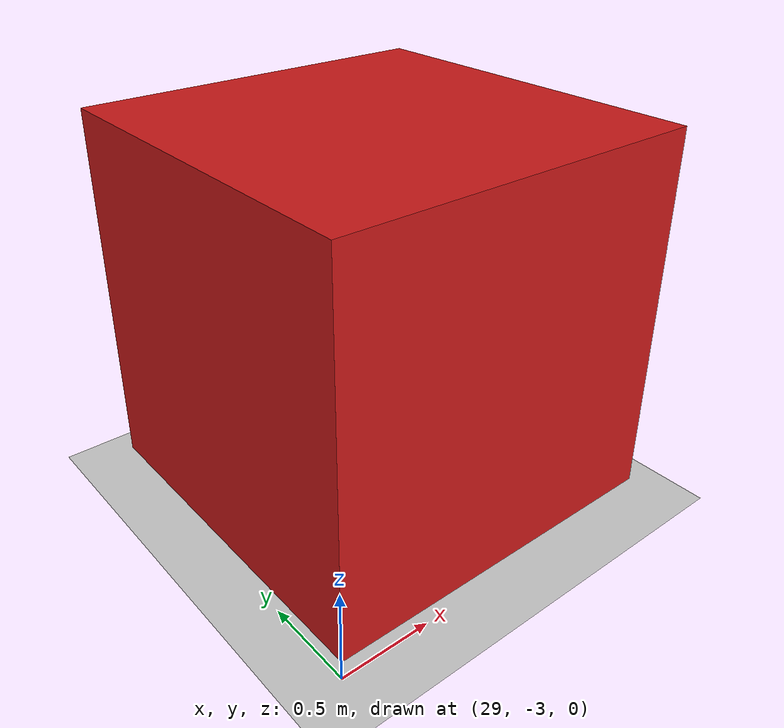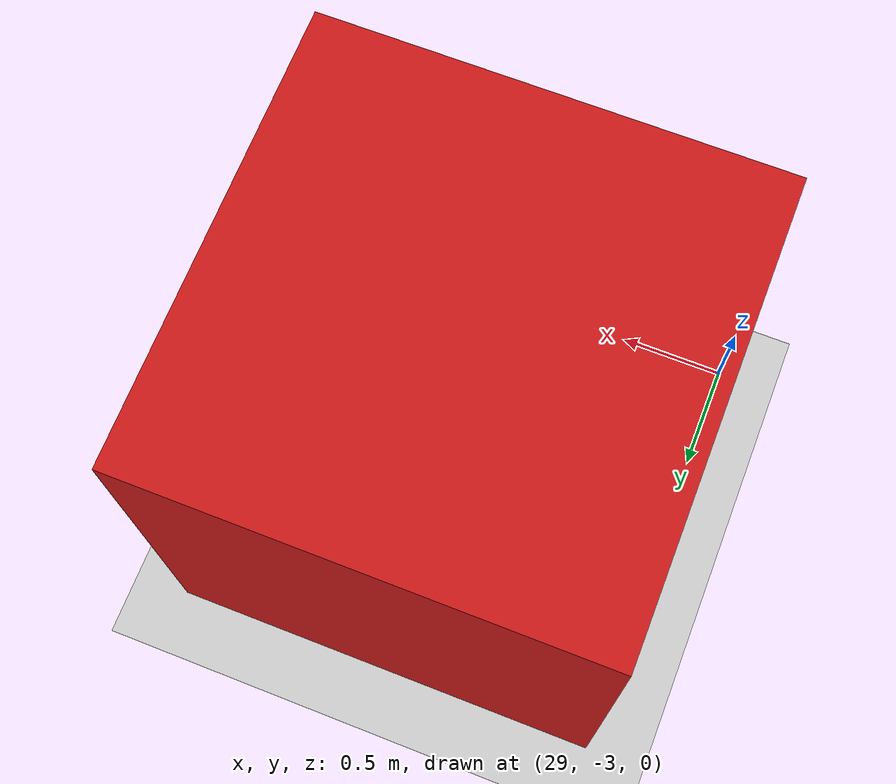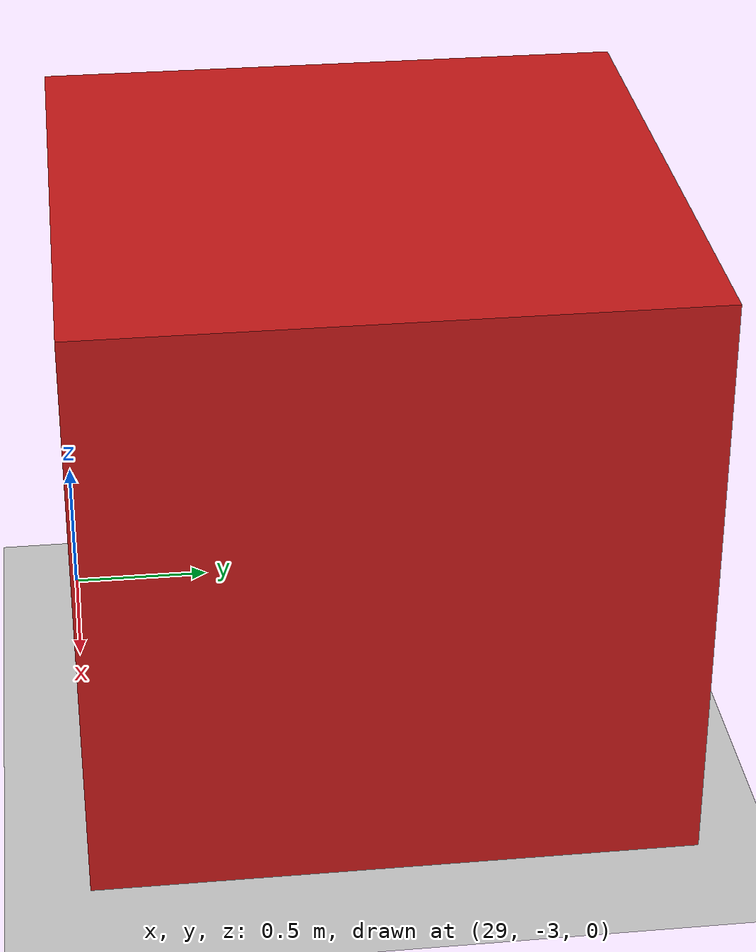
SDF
<sdf version="1.6">
 <world name="default">
  <light name="sun" type="directional">
   <pose>-25 -5 20 0 0 0</pose>
   <diffuse>0.8 0.8 0.8 100</diffuse>
   <specular>0.2 0.2 0.2 100</specular>
   <attenuation>
    <range>1000</range>
    <constant>0.9</constant>
    <linear>0.01</linear>
    <quadratic>0.001</quadratic>
   </attenuation>
   <direction>1 0.5 -1</direction>
  </light>
  <gravity>0 0 -9.8</gravity>
  <magnetic_field>6e-06 2.3e-05 -4.2e-05</magnetic_field>
  <atmosphere type="adiabatic"/>
  <physics name="default_physics" default="0" type="ode">
   <max_step_size>0.001</max_step_size>
   <real_time_factor>1</real_time_factor>
   <real_time_update_rate>1000</real_time_update_rate>
  </physics>
  <scene><ambient>0.4 0.4 0.4 1</ambient><background>0.7 0.7 0.7 1</background><shadows>1</shadows></scene>
  <audio><device>default</device></audio>
  <spherical_coordinates>
   <surface_model>EARTH_WGS84</surface_model>
   <latitude_deg>0</latitude_deg>
   <longitude_deg>0</longitude_deg>
   <elevation>0</elevation>
   <heading_deg>0</heading_deg>
  </spherical_coordinates>
  <include><uri>model://fake_traj</uri></include>
  <model name="my_obstacle">
   <pose>30 -2 1.1 0 0 0</pose>
   <static>true</static>
   <link name="link">
    <inertial>
     <mass>1.0</mass>
     <inertia><ixx>0.083</ixx><ixy>0.0</ixy><ixz>0.0</ixz><iyy>0.083</iyy><iyz>0.0</iyz><izz>0.083</izz></inertia>
    </inertial>
    <collision name="collision"><geometry><box><size>2 2 2</size></box></geometry></collision>
    <visual name="visual">
     <geometry><box><size>2 2 2</size></box></geometry>
     <material>
      <ambient>0.8 0.1 0.1 1</ambient>
      <diffuse>0.8 0.1 0.1 1</diffuse>
      <specular>0 0 0 0</specular>
      <emissive>0 0 0 1</emissive>
     </material>
    </visual>
   </link>
  </model>
 </world>
</sdf>

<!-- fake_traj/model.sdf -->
<sdf version="1.4">
    <model name="fake_traj">
        <static>true</static>
        <link name="link">
            <collision name="collision">
                <geometry>
                    <plane>
                        <normal>0 0 1</normal>
                        <size>300 300</size>
                    </plane>
                </geometry>
                <surface>
                    <friction>
                        <ode>
                            <mu>100</mu>
                            <mu2>50</mu2>
                        </ode>
                    </friction>
                </surface>
            </collision>
            <visual name="visual">
                <cast_shadows>false</cast_shadows>
                <geometry>
                    <plane>
                        <normal>0 0 1</normal>
                        <size>740 740</size>
                    </plane>
                </geometry>
                <material>
                    <script>
                        <uri>model://fake_traj/materials/scripts</uri>
                        <uri>model://fake_traj/materials/textures</uri>
                        <name>Track/Image</name>
                    </script>
                </material>
            </visual>
        </link>
    </model>
</sdf>
